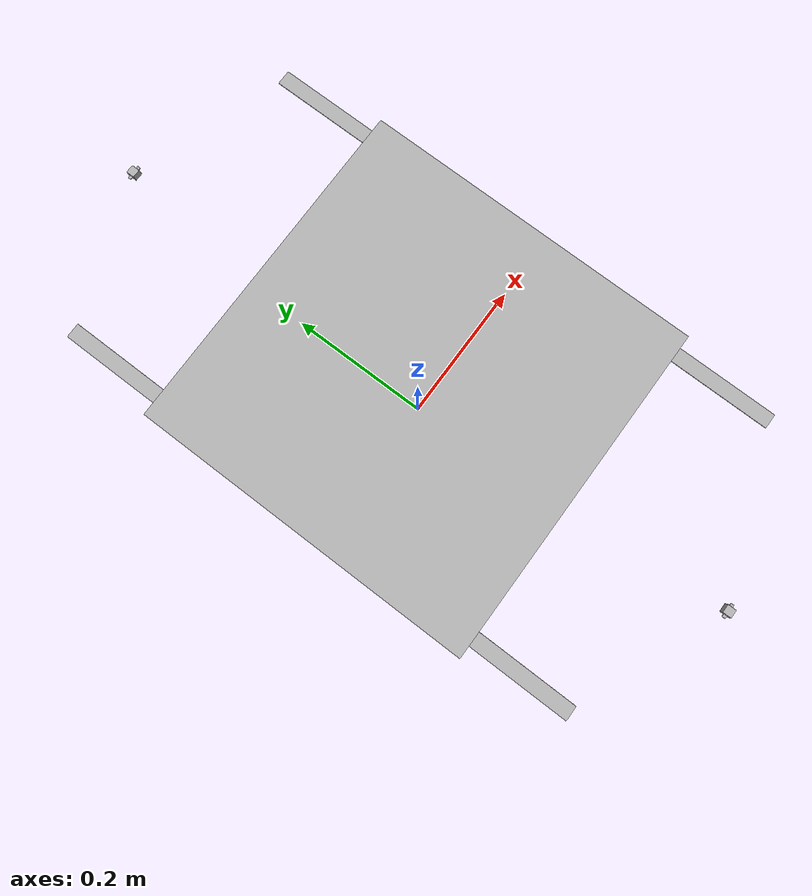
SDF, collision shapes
<?xml version="1.0" encoding="UTF-8"?>
<sdf version='1.9'>
  <model name='x500_dual_400'>zz
    <pose>0 0 0.217 0 0 1.57</pose>
    <self_collide>false</self_collide>
    <static>false</static>
    <link name="base_link">
     <inertial>
        <pose>0 0 0 0 0 0</pose>
        <mass>2.5</mass>
        <inertia>
          <ixx>0.0411</ixx>
          <ixy>0</ixy>
          <ixz>0</ixz>
          <iyy>0.0411</iyy>
          <iyz>0</iyz>
          <izz>0.05</izz>
        </inertia>
      </inertial>
      <gravity>true</gravity>
      <velocity_decay/>
      <visual name="base_link_visual">
        <pose>0 0 0 0 0 0</pose>
        <geometry>
          <mesh>
            <scale>1 1 1</scale>
            <uri>model://x500_dual_400/meshes/uav_frame_x500.dae</uri>
          </mesh>
        </geometry>
      </visual>
      <!-- Collision definition -->
      <collision name="base_link_collision_0">
        <pose> 0 0 -0.076276 0 0 0</pose>
        <geometry>
          <box>
            <size>0.40 0.40 0.278 </size>
          </box>
        </geometry>
        <surface>
          <contact>
            <ode>
              <min_depth>0.001</min_depth>
              <max_vel>0</max_vel>
            </ode>
          </contact>
          <friction>
            <ode/>
          </friction>
        </surface>
      </collision>
<!-- Collision definition END-->
<!-- Flight Sensors  -->
      <sensor name="air_pressure_sensor" type="air_pressure">
        <always_on>1</always_on>
        <update_rate>50</update_rate>
        <air_pressure>
          <pressure>
            <noise type="gaussian">
              <mean>0</mean>
              <stddev>0.01</stddev>
            </noise>
          </pressure>
        </air_pressure>
      </sensor>
      <sensor name="imu_sensor" type="imu">
        <always_on>1</always_on>
        <update_rate>250</update_rate>
      </sensor>
    </link>
<!-- Propellers definition -->
    <link name="rotor_0">
        <gravity>true</gravity>
        <self_collide>false</self_collide>
        <velocity_decay/>
        <pose>0.176876 -0.176876 0.06 0 0 0</pose>
        <inertial>
            <mass>0.016076923076923075</mass>
            <inertia>
              <ixx>3.8464910483993325e-07</ixx>
              <iyy>2.6115851691700804e-05</iyy>
              <izz>2.649858234714004e-05</izz>
            </inertia>
        </inertial>
       <visual name="rotor_0_visual">
        <pose>0 0 0 0 0 0</pose>
        <geometry>
          <mesh>
            <scale>1 1 1</scale>
            <uri>model://x500_dual_400/meshes/holybro_propeller_ccw.dae</uri>
          </mesh>
        </geometry>
      </visual>
      <collision name="rotor_0_collision">
        <pose>0 0 0 0 0 0 </pose>
        <geometry>
          <box>
            <size>0.2792307692307692 0.016923076923076923 0.0008461538461538462</size>
          </box>
        </geometry>
        <surface>
          <contact>
            <ode>
              <min_depth>0.001</min_depth>
              <max_vel>0</max_vel>
            </ode>
          </contact>
          <friction>
            <ode/>
          </friction>
        </surface>
      </collision>
    </link>
    <joint name="rotor_0_joint" type="revolute">
      <parent>base_link</parent>
      <child>rotor_0</child>
      <axis>
        <xyz>0 0 1</xyz>
        <limit>
          <lower>-1e+16</lower>
          <upper>1e+16</upper>
        </limit>
        <dynamics>
          <spring_reference>0</spring_reference>
          <spring_stiffness>0</spring_stiffness>
        </dynamics>
      </axis>
    </joint>

    <link name="rotor_1">
        <gravity>true</gravity>
        <self_collide>false</self_collide>
        <velocity_decay/>
        <pose>-0.176876 0.176876 0.06 0 0 0</pose>
        <inertial>
            <mass>0.016076923076923075</mass>
            <inertia>
              <ixx>3.8464910483993325e-07</ixx>
              <iyy>2.6115851691700804e-05</iyy>
              <izz>2.649858234714004e-05</izz>
            </inertia>
        </inertial>
       <visual name="rotor_1_visual">
        <pose>0 0 0 0 0 0</pose>
        <geometry>
          <mesh>
            <scale>1 1 1</scale>
            <uri>model://x500_dual_400/meshes/holybro_propeller_ccw.dae</uri>
          </mesh>
        </geometry>
      </visual>
      <collision name="rotor_1_collision">
        <pose>0 0 0 0 0 0 </pose>
        <geometry>
          <box>
            <size>0.2792307692307692 0.016923076923076923 0.0008461538461538462</size>
          </box>
        </geometry>
        <surface>
          <contact>
            <ode>
              <min_depth>0.001</min_depth>
              <max_vel>0</max_vel>
            </ode>
          </contact>
          <friction>
            <ode/>
          </friction>
        </surface>
      </collision>
    </link>
    <joint name="rotor_1_joint" type="revolute">
      <parent>base_link</parent>
      <child>rotor_1</child>
      <axis>
        <xyz>0 0 1</xyz>
        <limit>
          <lower>-1e+16</lower>
          <upper>1e+16</upper>
        </limit>
        <dynamics>
          <spring_reference>0</spring_reference>
          <spring_stiffness>0</spring_stiffness>
        </dynamics>
      </axis>
    </joint>

    <link name="rotor_2">
        <gravity>true</gravity>
        <self_collide>false</self_collide>
        <velocity_decay/>
        <pose> 0.176876 0.176876 0.06 0 0 0</pose>
        <inertial>
            <mass>0.016076923076923075</mass>
            <inertia>
              <ixx>3.8464910483993325e-07</ixx>
              <iyy>2.6115851691700804e-05</iyy>
              <izz>2.649858234714004e-05</izz>
            </inertia>
        </inertial>
       <visual name="rotor_2_visual">
        <pose>0 0 0 0 0 0</pose>
        <geometry>
          <mesh>
            <scale>1 1 1</scale>
            <uri>model://x500_dual_400/meshes/holybro_propeller_cw.dae</uri>
          </mesh>
        </geometry>
      </visual>
      <collision name="rotor_2_collision">
        <pose>0 0 0 0 0 0 </pose>
        <geometry>
          <box>
            <size>0.2792307692307692 0.016923076923076923 0.0008461538461538462</size>
          </box>
        </geometry>
        <surface>
          <contact>
            <ode>
              <min_depth>0.001</min_depth>
              <max_vel>0</max_vel>
            </ode>
          </contact>
          <friction>
            <ode/>
          </friction>
        </surface>
      </collision>
    </link>
    <joint name="rotor_2_joint" type="revolute">
      <parent>base_link</parent>
      <child>rotor_2</child>
      <axis>
        <xyz>0 0 1</xyz>
        <limit>
          <lower>-1e+16</lower>
          <upper>1e+16</upper>
        </limit>
        <dynamics>
          <spring_reference>0</spring_reference>
          <spring_stiffness>0</spring_stiffness>
        </dynamics>
      </axis>
    </joint>

    <link name="rotor_3">
        <gravity>true</gravity>
        <self_collide>false</self_collide>
        <velocity_decay/>
        <pose> -0.176876 -0.176876 0.06 0 0 0</pose>
        <inertial>
            <mass>0.016076923076923075</mass>
            <inertia>
              <ixx>3.8464910483993325e-07</ixx>
              <iyy>2.6115851691700804e-05</iyy>
              <izz>2.649858234714004e-05</izz>
            </inertia>
        </inertial>
       <visual name="rotor_3_visual">
        <pose>0 0 0 0 0 0</pose>
        <geometry>
          <mesh>
            <scale>1 1 1</scale>
            <uri>model://x500_dual_400/meshes/holybro_propeller_cw.dae</uri>
          </mesh>
        </geometry>
      </visual>
      <collision name="rotor_3_collision">
        <pose>0 0 0 0 0 0 </pose>
        <geometry>
          <box>
            <size>0.2792307692307692 0.016923076923076923 0.0008461538461538462</size>
          </box>
        </geometry>
        <surface>
          <contact>
            <ode>
              <min_depth>0.001</min_depth>
              <max_vel>0</max_vel>
            </ode>
          </contact>
          <friction>
            <ode/>
          </friction>
        </surface>
      </collision>
    </link>
    <joint name="rotor_3_joint" type="revolute">
      <parent>base_link</parent>
      <child>rotor_3</child>
      <axis>
        <xyz>0 0 1</xyz>
        <limit>
          <lower>-1e+16</lower>
          <upper>1e+16</upper>
        </limit>
        <dynamics>
          <spring_reference>0</spring_reference>
          <spring_stiffness>0</spring_stiffness>
        </dynamics>
      </axis>
    </joint>
<!-- Propellers definition END-->

<!-- EDF Frame 400  -->

<!-- Manipulator arm  -->
    <link name="thrusters_frame">
        <gravity>true</gravity>
        <self_collide>false</self_collide>
        <velocity_decay/>
        <pose> 0.0 0 0 0 0 0 </pose>
        <inertial>
          <pose> -0.207 0 0 0 0 0</pose>
          <mass>0.16</mass>
          <inertia>
            <ixx>1.8727e-05</ixx>
            <iyy>0.0027</iyy>
            <izz>0.0027</izz>
        </inertia>
        </inertial>
       <visual name="thrusters_frame_visual">
        <pose>0 0 0 0 0 0</pose>
        <geometry>
          <mesh>
            <scale>1 1 1</scale>
            <uri>model://x500_dual_400/meshes/thrusters_frame_400.dae</uri>
          </mesh>
        </geometry>
      </visual>
      <!-- Correct the collision to be simple box -->
      <collision name="thrusters_frame_collision">
        <pose> 0 0 0 0 0 0 </pose>
        <geometry>
          <box>
            <size>0.250 0.009 0.009 </size>
          </box>
        </geometry>
        <surface>
          <contact>
            <ode>
              <min_depth>0.001</min_depth>
              <max_vel>0</max_vel>
            </ode>
          </contact>
          <friction>
            <ode/>
          </friction>
        </surface>
      </collision>
    </link>
    <!-- Correct the collision to be simple box -->
    <joint name="thrusters_frame_joint" type="fixed">
      <parent>base_link</parent>
      <child>thrusters_frame</child>
    </joint>

<!-- EDF Frame 400 END -->
<link name="edf_1_body">
        <gravity>true</gravity>
        <self_collide>false</self_collide>
        <velocity_decay/>
        <pose> 0.400 0 0.016 0 0 0 </pose>
        <inertial>
            <mass>0.016076923076923075</mass>
            <inertia>
              <ixx>3.8464910483993325e-07</ixx>
              <iyy>2.6115851691700804e-05</iyy>
              <izz>2.649858234714004e-05</izz>
            </inertia>
        </inertial>
       <visual name="edf_1_visual">
        <pose>0 0 0 0 0 0</pose>
        <geometry>
          <mesh>
            <scale>1 1 1</scale>
            <uri>model://x500_dual_400/meshes/edf_housing.dae</uri>
          </mesh>
        </geometry>
      </visual>
      <collision name="edf_1_collision">
        <pose>0 0 0 0 0 0 </pose>
        <geometry>
          <box>
            <size>0.01 0.01 0.01</size>
          </box>
        </geometry>
        <surface>
          <contact>
            <ode>
              <min_depth>0.001</min_depth>
              <max_vel>0</max_vel>
            </ode>
          </contact>
          <friction>
            <ode/>
          </friction>
        </surface>
      </collision>
    </link>
    <joint name="edf_1_joint" type="revolute">
      <parent>thrusters_frame</parent>
      <child>edf_1_body</child>
      <pose> 0 0 0 0 0 0 </pose>
      <axis>
        <xyz>0 0 1</xyz>
        <limit>
          <lower>-3.145159</lower>
          <upper>3.145159</upper>
        </limit>
        <dynamics>
          <friction>1.0</friction>
          <spring_reference>0</spring_reference>
          <spring_stiffness>0</spring_stiffness>
        </dynamics>
      </axis>
    </joint>

    <link name="edf_2_body">
        <gravity>true</gravity>
        <self_collide>false</self_collide>
        <velocity_decay/>
        <pose> -0.400 0 0.016 0 0 3.14159 </pose>
        <inertial>
            <mass>0.016076923076923075</mass>
            <inertia>
              <ixx>3.8464910483993325e-07</ixx>
              <iyy>2.6115851691700804e-05</iyy>
              <izz>2.649858234714004e-05</izz>
            </inertia>
        </inertial>
       <visual name="edf_2_visual">
        <pose>0 0 0 0 0 0</pose>
        <geometry>
          <mesh>
            <scale>1 1 1</scale>
            <uri>model://x500_dual_400/meshes/edf_housing.dae</uri>
          </mesh>
        </geometry>
      </visual>
      <collision name="edf_2_collision">
        <pose>0 0 0 0 0 0 </pose>
        <geometry>
          <box>
            <size>0.01 0.01 0.01</size>
          </box>
        </geometry>
        <surface>
          <contact>
            <ode>
              <min_depth>0.001</min_depth>
              <max_vel>0</max_vel>
            </ode>
          </contact>
          <friction>
            <ode/>
          </friction>
        </surface>
      </collision>
    </link>
    <joint name="edf_2_joint" type="revolute">
      <parent>thrusters_frame</parent>
      <child>edf_2_body</child>
      <pose> 0 0 0 0 0 0 </pose>
      <axis>
        <xyz>0 0 1</xyz>
        <limit>
          <lower>-3.145159</lower>
          <upper>3.145159</upper>
        </limit>
        <dynamics>
          <friction>1.0</friction>
          <spring_reference>0</spring_reference>
          <spring_stiffness>0</spring_stiffness>
        </dynamics>
      </axis>
    </joint>

<link name="rotor_4">
        <gravity>true</gravity>
        <self_collide>false</self_collide>
        <velocity_decay/>
        <pose> 0.400 0.0  0.016  0.0 1.5708 3.145159</pose>
        <inertial>
            <mass>0.016076923076923075</mass>
            <inertia>
              <ixx>3.8464910483993325e-07</ixx>
              <iyy>2.6115851691700804e-05</iyy>
              <izz>2.649858234714004e-05</izz>
            </inertia>
        </inertial>
       <visual name="rotor_4_visual">
        <pose>0 0 0 0 0 0</pose>
        <geometry>
          <mesh>
            <scale>1 1 1</scale>
            <uri>model://x500_dual_400/meshes/edf_impeler.dae</uri>
          </mesh>
        </geometry>
      </visual>
      <collision name="rotor_4_collision">
        <pose>0 0 0 0 0 0 </pose>
        <geometry>
          <box>
            <size>0.0008461538461538462 0.016923076923076923 0.004</size>
          </box>
        </geometry>
        <surface>
          <contact>
            <ode>
              <min_depth>0.001</min_depth>
              <max_vel>0</max_vel>
            </ode>
          </contact>
          <friction>
            <ode/>
          </friction>
        </surface>
      </collision>
    </link>
    <joint name="rotor_4_joint" type="revolute">
      <parent>edf_1_body</parent>
      <child>rotor_4</child>
      <axis>
        <xyz>0 0 1</xyz>
        <limit>
          <lower>-1e+16</lower>
          <upper>1e+16</upper>
        </limit>
        <dynamics>
          <spring_reference>0</spring_reference>
          <spring_stiffness>0</spring_stiffness>
        </dynamics>
      </axis>
    </joint>

<link name="rotor_5">
        <gravity>true</gravity>
        <self_collide>false</self_collide>
        <velocity_decay/>
        <pose> -0.400 0.0  0.016  0.0 1.5708 0.0</pose>
        <inertial>
            <mass>0.016076923076923075</mass>
            <inertia>
              <ixx>3.8464910483993325e-07</ixx>
              <iyy>2.6115851691700804e-05</iyy>
              <izz>2.649858234714004e-05</izz>
            </inertia>
        </inertial>
       <visual name="rotor_5_visual">
        <pose>0 0 0 0 0 0</pose>
        <geometry>
          <mesh>
            <scale>1 1 1</scale>
            <uri>model://x500_dual_400/meshes/edf_impeler.dae</uri>
          </mesh>
        </geometry>
      </visual>
      <collision name="rotor_5_collision">
        <pose>0 0 0 0 0 0 </pose>
        <geometry>
          <box>
            <size>0.0008461538461538462 0.016923076923076923 0.004</size>
          </box>
        </geometry>
        <surface>
          <contact>
            <ode>
              <min_depth>0.001</min_depth>
              <max_vel>0</max_vel>
            </ode>
          </contact>
          <friction>
            <ode/>
          </friction>
        </surface>
      </collision>
    </link>
    <joint name="rotor_5_joint" type="revolute">
      <parent>edf_2_body</parent>
      <child>rotor_5</child>
      <axis>
        <xyz>0 0 1</xyz>
        <limit>
          <lower>-1e+16</lower>
          <upper>1e+16</upper>
        </limit>
        <dynamics>
          <spring_reference>0</spring_reference>
          <spring_stiffness>0</spring_stiffness>
        </dynamics>
      </axis>
    </joint>
<!-- Horizontal thrusters -->

<!-- Manipulator arm  -->

<!-- Manipulator arm  END -->
<!-- Additional Rotors 4,5END -->

   <plugin filename="gz-sim-multicopter-motor-model-system" name="gz::sim::systems::MulticopterMotorModel">
      <jointName>rotor_0_joint</jointName>
      <linkName>rotor_0</linkName>
      <turningDirection>ccw</turningDirection>
      <timeConstantUp>0.0125</timeConstantUp>
      <timeConstantDown>0.025</timeConstantDown>
      <maxRotVelocity>10920.0</maxRotVelocity>
      <motorConstant>12.1311e-06</motorConstant>
      <momentConstant>0.016</momentConstant>
      <commandSubTopic>command/motor_speed</commandSubTopic>
      <motorNumber>0</motorNumber>
      <rotorDragCoefficient>8.06428e-05</rotorDragCoefficient>
      <rollingMomentCoefficient>1e-06</rollingMomentCoefficient>
      <rotorVelocitySlowdownSim>10</rotorVelocitySlowdownSim>
      <motorType>velocity</motorType>
    </plugin>
    <plugin filename="gz-sim-multicopter-motor-model-system" name="gz::sim::systems::MulticopterMotorModel">
      <jointName>rotor_1_joint</jointName>
      <linkName>rotor_1</linkName>
      <turningDirection>ccw</turningDirection>
      <timeConstantUp>0.0125</timeConstantUp>
      <timeConstantDown>0.025</timeConstantDown>
     <maxRotVelocity>10920.0</maxRotVelocity>
      <motorConstant>12.1311e-06</motorConstant>
      <momentConstant>0.016</momentConstant>
      <commandSubTopic>command/motor_speed</commandSubTopic>
      <motorNumber>1</motorNumber>
      <rotorDragCoefficient>8.06428e-05</rotorDragCoefficient>
      <rollingMomentCoefficient>1e-06</rollingMomentCoefficient>
      <rotorVelocitySlowdownSim>10</rotorVelocitySlowdownSim>
      <motorType>velocity</motorType>
    </plugin>
    <plugin filename="gz-sim-multicopter-motor-model-system" name="gz::sim::systems::MulticopterMotorModel">
      <jointName>rotor_2_joint</jointName>
      <linkName>rotor_2</linkName>
      <turningDirection>cw</turningDirection>
      <timeConstantUp>0.0125</timeConstantUp>
      <timeConstantDown>0.025</timeConstantDown>
      <maxRotVelocity>10920.0</maxRotVelocity>
      <motorConstant>12.1311e-06</motorConstant>
      <momentConstant>0.016</momentConstant>
      <commandSubTopic>command/motor_speed</commandSubTopic>
      <motorNumber>2</motorNumber>
      <rotorDragCoefficient>8.06428e-05</rotorDragCoefficient>
      <rollingMomentCoefficient>1e-06</rollingMomentCoefficient>
      <rotorVelocitySlowdownSim>10</rotorVelocitySlowdownSim>
      <motorType>velocity</motorType>
    </plugin>
    <plugin filename="gz-sim-multicopter-motor-model-system" name="gz::sim::systems::MulticopterMotorModel">
      <jointName>rotor_3_joint</jointName>
      <linkName>rotor_3</linkName>
      <turningDirection>cw</turningDirection>
      <timeConstantUp>0.0125</timeConstantUp>
      <timeConstantDown>0.025</timeConstantDown>
     <maxRotVelocity>10920.0</maxRotVelocity>
      <motorConstant>12.1311e-06</motorConstant>
      <momentConstant>0.016</momentConstant>
      <commandSubTopic>command/motor_speed</commandSubTopic>
      <motorNumber>3</motorNumber>
      <rotorDragCoefficient>8.06428e-05</rotorDragCoefficient>
      <rollingMomentCoefficient>1e-06</rollingMomentCoefficient>
      <rotorVelocitySlowdownSim>10</rotorVelocitySlowdownSim>
      <motorType>velocity</motorType>
    </plugin>

    <!-- Horizontal thrusters -->
    <plugin filename="gz-sim-multicopter-motor-model-system" name="gz::sim::systems::MulticopterMotorModel">
      <jointName>rotor_4_joint</jointName>
      <linkName>rotor_4</linkName>
      <turningDirection>ccw</turningDirection>
      <timeConstantUp>0.0125</timeConstantUp>
      <timeConstantDown>0.025</timeConstantDown>
      <maxRotVelocity>1000.0</maxRotVelocity>
      <motorConstant>9.54858e-06</motorConstant>
      <momentConstant>0.016</momentConstant>
      <commandSubTopic>command/motor_speed</commandSubTopic>
      <motorNumber>4</motorNumber>
      <rotorDragCoefficient>8.06428e-05</rotorDragCoefficient>
      <rollingMomentCoefficient>1e-06</rollingMomentCoefficient>
      <rotorVelocitySlowdownSim>10</rotorVelocitySlowdownSim>
      <motorType>velocity</motorType>
    </plugin>

    <plugin filename="gz-sim-multicopter-motor-model-system" name="gz::sim::systems::MulticopterMotorModel">
      <jointName>rotor_5_joint</jointName>
      <linkName>rotor_5</linkName>
      <turningDirection>ccw</turningDirection>
      <timeConstantUp>0.0125</timeConstantUp>
      <timeConstantDown>0.025</timeConstantDown>
      <maxRotVelocity>1000.0</maxRotVelocity>
      <motorConstant>9.54858e-06</motorConstant>
      <momentConstant>0.016</momentConstant>
      <commandSubTopic>command/motor_speed</commandSubTopic>
      <motorNumber>5</motorNumber>
      <rotorDragCoefficient>8.06428e-05</rotorDragCoefficient>
      <rollingMomentCoefficient>1e-06</rollingMomentCoefficient>
      <rotorVelocitySlowdownSim>10</rotorVelocitySlowdownSim>
      <motorType>velocity</motorType>
    </plugin>
<!-- Horizontal thrusters END -->

  </model>
</sdf>
